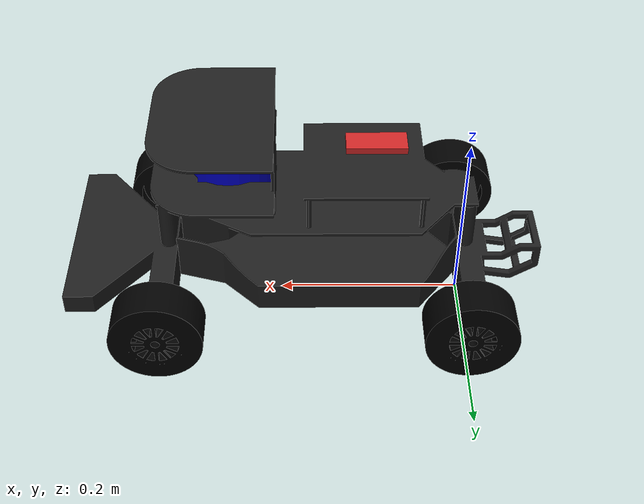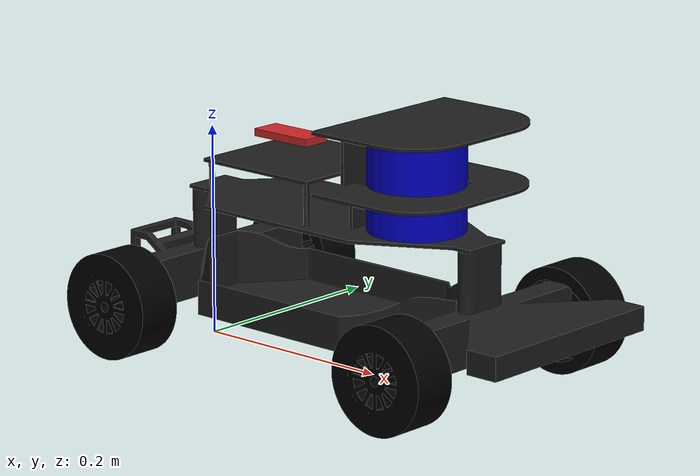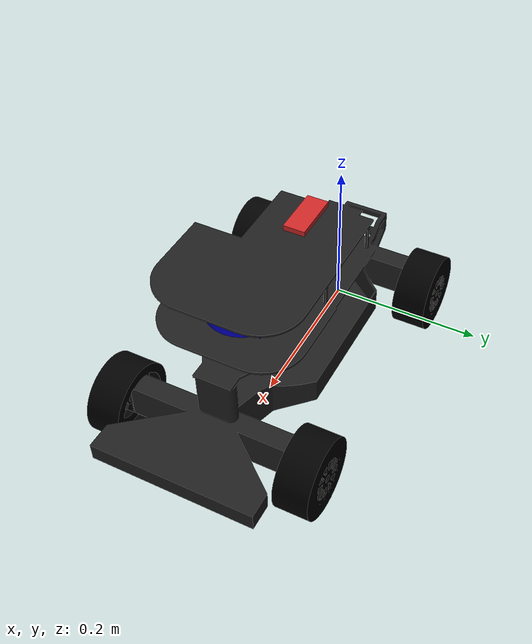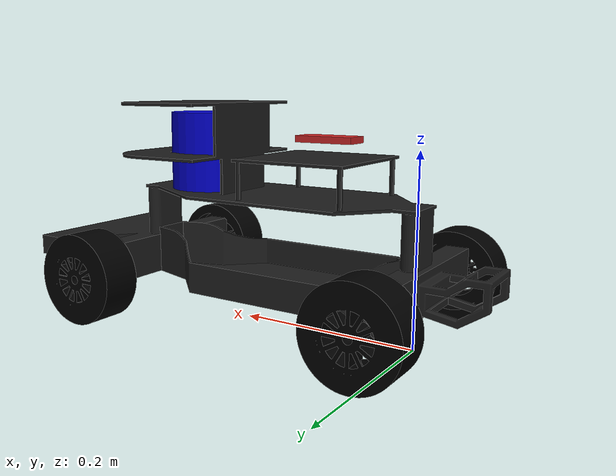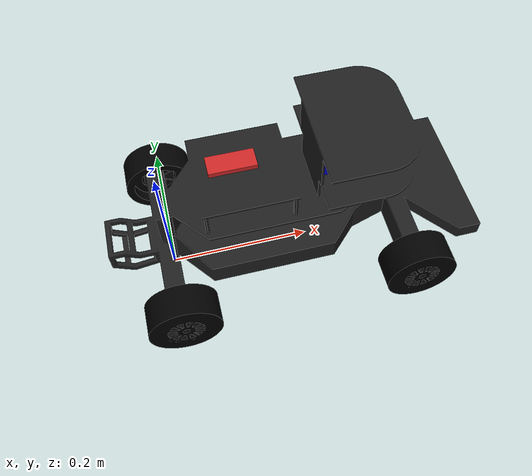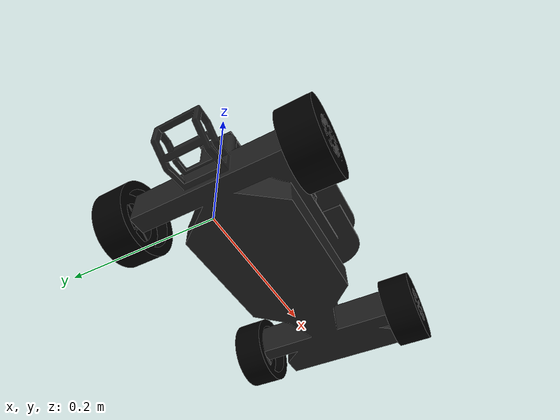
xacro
<?xml version="1.0"?>
<robot xmlns:xacro="http://www.ros.org/wiki/xacro" name="mintaur">

    <xacro:include filename="$(find avc_urdf)/urdf/materials.xacro" />
	<xacro:include filename="$(find avc_urdf)/urdf/properties.xacro" />
    <xacro:include filename="$(find avc_urdf)/urdf/links.xacro" />
    <xacro:include filename="$(find avc_urdf)/urdf/gazebo.xacro" />

  <xacro:base_link/>

  <xacro:wheel prefix="right" suffix="front" fb="${frontWheelDist}" lr="${-seperationWheelDist}"/>
  <xacro:wheel prefix="left" suffix="front" fb="${frontWheelDist}" lr="${seperationWheelDist}"/>
  <xacro:wheel prefix="right" suffix="back" fb="${backWheelDist}" lr="${-seperationWheelDist}"/>
  <xacro:wheel prefix="left" suffix="back" fb="${backWheelDist}" lr="${seperationWheelDist}"/>

  <xacro:imu />
  <xacro:lidar />

</robot>

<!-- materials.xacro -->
<robot name="mintaur"
    xmlns:xacro="http://www.ros.org/wiki/xacro">

    <material name="black">
        <color rgba="0.0 0.0 0.0 1.0"/>
    </material>

    <material name="blue">
        <color rgba="0.0 0.0 0.8 1.0"/>
    </material>

    <material name="green">
        <color rgba="0.0 0.8 0.0 1.0"/>
    </material>

    <material name="grey">
        <color rgba="0.2 0.2 0.2 1.0"/>
    </material>

    <material name="orange">
        <color rgba="${255/255} ${108/255} ${10/255} 1.0"/>
    </material>

    <material name="brown">
        <color rgba="${222/255} ${207/255} ${195/255} 1.0"/>
    </material>

    <material name="red">
        <color rgba="0.8 0.0 0.0 1.0"/>
    </material>

    <material name="white">
        <color rgba="1.0 1.0 1.0 1.0"/>
    </material>

    <material name="acrylic">
        <color rgba="1.0 1.0 1.0 0.4"/>
    </material>

</robot>

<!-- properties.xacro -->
<robot xmlns:xacro="http://www.ros.org/wiki/xacro" name="mintaur">

    <!-- X axis direction is forward, Y axis direction is left -->

    <!-- ______________Chassis parameters__________________________ -->
    <xacro:property name="chassisL" value="0.51" />
    <xacro:property name="chassisW" value="0.2" />
    <xacro:property name="chassisH" value="0.15" />

    <xacro:property name="chassisMass" value="1"/>
    <xacro:property name="chassisIxx" value="0.4"/>
    <xacro:property name="chassisIxy" value="0.4"/>
    <xacro:property name="chassisIyy" value="0.4"/>
    <xacro:property name="chassisIxz" value="0.0"/>
    <xacro:property name="chassisIyz" value="0.0"/>
    <xacro:property name="chassisIzz" value="0.0"/>

    <xacro:property name="chassisScale" value="0.001"/>

    <xacro:property name="chassisMeshXoffset" value="-0.125"/>
    <xacro:property name="chassisMeshYoffset" value="-0.070"/>
    <xacro:property name="chassisMeshZoffset" value="-0.085"/>

    <!-- ______________Wheel parameters__________________________ -->
    <!-- Wheel Rotation Limits> -->
    <xacro:property name="llimit" value="-0.785" />
    <xacro:property name="ulimit" value="0.785" />

    <!-- Wheel Locations -->
    <xacro:property name="rightWheelDist" value="-.1215" />
    <xacro:property name="leftWheelDist" value=".1215" />
    <xacro:property name="frontWheelDist" value="0.1535" />
    <xacro:property name="backWheelDist" value="-0.1763" />

    <xacro:property name="wheelDrop" value="-0.075" />
    <xacro:property name="wheelScale" value="0.001"/>

    <xacro:property name="wheelMeshXoffset" value="0"/>
    <xacro:property name="wheelMeshYoffset" value="0.022"/>
    <xacro:property name="wheelMeshYoffsetLeft" value="-0.022"/>
    <xacro:property name="wheelMeshZoffset" value="0"/>

    <!-- Wheel Physical Propreties-->
    <xacro:property name="wheelThickness" value="0.043" />
    <xacro:property name="wheelRadius" value="0.05"/>
    <xacro:property name="axleEffort" value="0.001"/>
    <xacro:property name="axleVelocity" value="0.5"/>

    <xacro:property name="wheelMass" value="1"/>
    <xacro:property name="wheelIxx" value="0.4"/>
    <xacro:property name="wheelIyy" value="0.4"/>
    <xacro:property name="wheelIzz" value="0.4"/>
    <xacro:property name="wheelIxy" value="0.0"/>
    <xacro:property name="wheelIxz" value="0.0"/>
    <xacro:property name="wheelIyz" value="0.0"/>

    <!-- Wheel Gazebo and Inertial Properties -->
    <xacro:property name="wheelMu1" value="200"/>
    <xacro:property name="wheelMu2" value="100"/>
    <xacro:property name="wheelKp" value="10000000.0"/>
    <xacro:property name="wheelKd" value="1.0"/>

    <!-- ______________IMU parameters__________________________ -->
    <xacro:property name="imuL" value="0.064" />
    <xacro:property name="imuW" value="0.028" />
    <xacro:property name="imuH" value="0.007" />

    <xacro:property name="imuMass" value="0.1"/>
    <xacro:property name="imuIxx" value="0.4"/>
    <xacro:property name="imuIxy" value="0.4"/>
    <xacro:property name="imuIyy" value="0.4"/>
    <xacro:property name="imuIxz" value="0.4"/>
    <xacro:property name="imuIyz" value="0.4"/>
    <xacro:property name="imuIzz" value="0.4"/>

    <xacro:property name="imuXoffset" value="-0.077"/>
    <xacro:property name="imuYoffset" value="0.0"/>
    <xacro:property name="imuZoffset" value="0.077"/>

    <!-- __________________Random Values______________________ -->
    <xacro:property name="width" value="0.2" />
    <xacro:property name="leglen" value="0.6" />
    <xacro:property name="polelen" value="0.2" />
    <xacro:property name="bodylen" value="0.6" />
    <xacro:property name="baselen" value="0.4" />
    <xacro:property name="wheeldiam" value="0.07" />
    <xacro:property name="pis" value="3.1415" />
    <xacro:property name="seperationWheelDist" value=".1215" />

    <!-- ______________Lidar parameters__________________________ -->
    <xacro:property name="lidarThick" value="0.086" />
    <xacro:property name="lidarRadius" value="0.045" />

    <xacro:property name="lidarXoffset" value="0.076"/>
    <xacro:property name="lidarYoffset" value="0.0"/>
    <xacro:property name="lidarZoffset" value="0.059"/>

    <xacro:property name="lidarMass" value="0.025"/>
    <xacro:property name="lidarIxx" value="${0.08333333*lidarMass*(3*lidarRadius*lidarRadius+lidarThick*lidarThick)}"/>
    <xacro:property name="lidarIxy" value="0.0"/>
    <xacro:property name="lidarIyy" value="${0.08333333*lidarMass*(3*lidarRadius*lidarRadius+lidarThick*lidarThick)}"/>
    <xacro:property name="lidarIxz" value="0.0"/>
    <xacro:property name="lidarIyz" value="0.0"/>
    <xacro:property name="lidarIzz" value="${0.5*lidarMass*(lidarRadius*lidarRadius)}"/>

</robot>

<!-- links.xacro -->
<robot xmlns:xacro="http://www.ros.org/wiki/xacro" name="mintaur">

  <xacro:include filename="$(find avc_urdf)/urdf/inertial.xacro" />
  <xacro:include filename="$(find avc_urdf)/urdf/joints.xacro" />
  <xacro:include filename="$(find avc_urdf)/urdf/transmissions.xacro" />
  <xacro:include filename="$(find avc_urdf)/urdf/geometries.xacro" />

  <xacro:macro name="base_link">
   <link name="base_footprint"/>

  <joint name="base_joint" type="fixed">
    <parent link="base_footprint"/>
    <child link="base_link" />
    <origin xyz="${-backWheelDist} 0 0.13" rpy="0 0 0"/>
  </joint>

    <link name="base_link">
      <visual>
        <geometry>
          <mesh filename="file:///$(find avc_urdf)/meshes/chassis2.DAE" scale="${chassisScale} ${chassisScale} ${chassisScale}"/>
        </geometry>
        <origin rpy="1.57 0 0" xyz="${chassisMeshXoffset} ${chassisMeshYoffset} ${chassisMeshZoffset}" />
      </visual>
      <collision>
        <geometry>
          <box size = "${chassisL} ${chassisW} ${chassisH} "/>
        </geometry>
      </collision>
    </link>
    <xacro:base_gazebo/>
  </xacro:macro>

  <xacro:macro name="wheel" params="prefix suffix fb lr">

    <link name="${prefix}_${suffix}_wheel">
      <visual>
        <xacro:wheel_mesh_geometry side="${prefix}"/>
        <material name="black" />
      </visual>
      <collision>
        <xacro:wheel_geometry />
      </collision>
      <xacro:wheel_inertial />
    </link>

    <link name="${prefix}_${suffix}_axle"/>

  	<xacro:axle_joint prefix="${prefix}" suffix="${suffix}" fb="${fb}" lr="${lr}"/>

    <xacro:wheel_move_joint prefix="${prefix}" suffix="${suffix}" fb="${fb}" lr="${lr}" />

    <!-- This block provides the simulator (Gazebo) with information on a few additional
    physical properties. See http://gazebosim.org/tutorials/?tut=ros_urdf for more-->
    <xacro:wheel_gazebo prefix="${prefix}" suffix="${suffix}" />

    <!-- This block connects the wheel joint to an actuator (motor), which informs both
    simulation and visualization of the robot -->
    <xacro:wheel_transmission prefix="${prefix}" suffix="${suffix}" />

  </xacro:macro>

  <xacro:macro name="imu">
    <link name="imu_link">
      <visual>
        <xacro:imu_geometry />
      </visual>
      <collision>
        <xacro:imu_geometry />
      </collision>
      <xacro:imu_inertial />
    </link>
    <xacro:imu_joint />

    <xacro:imu_gazebo />
  </xacro:macro>

  <xacro:macro name="lidar">
    <link name="lidar_link">
      <visual>
        <xacro:lidar_geometry />
        <material name="blue" />
      </visual>
      <collision>
        <xacro:lidar_geometry />
      </collision>
      <xacro:lidar_inertial />
    </link>
    <xacro:lidar_joint />

    <xacro:lidar_gazebo />
  </xacro:macro>

</robot>

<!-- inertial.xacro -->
<robot xmlns:xacro="http://www.ros.org/wiki/xacro" name="mintaur">

	<xacro:macro name="box_inertial">
		<inertial>
			<mass value="${chassisMass}"/>
			<inertia ixx="${chassisIxx}" ixy="${chassisIxy}" ixz="${chassisIxz}" iyy="${chassisIyy}" iyz="${chassisIyz}" izz="${chassisIzz}"/>
		</inertial>
	</xacro:macro>

	<xacro:macro name="default_inertial" params="mass">
		<inertial>
			<mass value="${mass}" />
			<inertia ixx="1.0" ixy="0.0" ixz="0.0" iyy="1.0" iyz="0.0" izz="1.0" />
		</inertial>
	</xacro:macro>

	<xacro:macro name="wheel_inertial">
		<inertial>
			<mass value="${wheelMass}"/>
			<inertia ixx="${wheelIxx}" ixy="${wheelIxy}" ixz="${wheelIxz}" iyy="${wheelIyy}" iyz="${wheelIyz}" izz="${wheelIzz}"/>
		</inertial>
	</xacro:macro>

	<xacro:macro name="axle_inertial">
		<inertial>
			<mass value="0.001"/>
			<inertia ixx="0.0" ixy="0.0" ixz="0.0" iyy="0.0" iyz="0.0" izz="0.0"/>
		</inertial>
	</xacro:macro>

	<xacro:macro name="imu_inertial">
		<inertial>
			<mass value="${imuMass}"/>
			<inertia ixx="${imuIxx}" ixy="${imuIxy}" ixz="${imuIxz}" iyy="${imuIyy}" iyz="${imuIyz}" izz="${imuIzz}"/>
		</inertial>
	</xacro:macro>

	<xacro:macro name="lidar_inertial">
		<inertial>
			<mass value="${lidarMass}"/>
			<inertia ixx="${lidarIxx}" ixy="${lidarIxy}" ixz="${lidarIxz}" iyy="${lidarIyy}" iyz="${lidarIyz}" izz="${lidarIzz}"/>
		</inertial>
	</xacro:macro>

</robot>

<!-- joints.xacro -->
<robot xmlns:xacro="http://www.ros.org/wiki/xacro" name="mintaur">

	<xacro:macro name="wheel_move_joint" params="prefix suffix fb lr">
        <joint name="${prefix}_${suffix}_wheel_joint" type="continuous">
        <axis xyz="0 1 0" rpy="0 0 0" />
        <parent link="${prefix}_${suffix}_axle"/>
        <child link="${prefix}_${suffix}_wheel"/>
        <origin xyz="0 0 0" rpy="0 0 0"/>
        </joint>
	</xacro:macro>

    <xacro:macro name="wheel_move_joint2" params="prefix suffix fb lr">
        <joint name="$wheel_{prefix}_joint" type="continuous">
        <axis xyz="0 1 0" rpy="0 0 0" />
        <parent link="base_link"/>
        <child link="${prefix}_${suffix}_wheel"/>
        <origin xyz="${fb} ${lr} ${-wheeldiam/2-.05}" rpy="0 0 0"/>
        </joint>
	</xacro:macro>

	<xacro:macro name="axle_joint" params="prefix suffix fb lr">
        <joint name="${prefix}_${suffix}_axle_joint" type="revolute">
            <axis xyz="0 0 1"/>
            <limit effort="${axleEffort}" lower="${llimit}" upper="${ulimit}" velocity="${axleVelocity}"/>
            <parent link="base_link"/>
            <child link="${prefix}_${suffix}_axle"/>
            <origin xyz="${fb} ${lr} ${wheelDrop}" />
        </joint>
	</xacro:macro>

	<xacro:macro name="rear_wheel_joint" params="side fob sideDim fobDim">
        <joint name="${side}_${fob}_wheel_joint" type="continuous">
            <axis xyz="0 1 0"/>
            <parent link="base_link"/>
            <child link="${side}_${fob}_wheel"/>
            <origin xyz="${fobDim} ${sideDim} ${wheelDrop}" />
        </joint>
	</xacro:macro>

    <xacro:macro name="front_wheel_joint" params="side fob sideDim fobDim">
        <joint name="${side}_${fob}_wheel_joint" type="continuous">
            <axis xyz="0 1 0"/>
            <parent link="${side}_${fob}_axle"/>
            <child link="${side}_${fob}_wheel"/>
            <origin xyz="0 0 0" />
        </joint>
	</xacro:macro>

    <xacro:macro name="chassis_box_joint">
        <joint name="chassis_box_joint" type="fixed">
            <axis xyz="0 1 0"/>
            <parent link="base_link"/>
            <child link="chassis_box_link"/>
            <origin xyz="0 0 0" />
        </joint>
	</xacro:macro>

    <xacro:macro name="imu_joint">
        <joint name="imu_joint" type="fixed">
            <axis xyz="0 1 0"/>
            <parent link="base_link"/>
            <child link="imu_link"/>
            <origin xyz="${imuXoffset} ${imuYoffset} ${imuZoffset}" />
        </joint>
    </xacro:macro>

    <xacro:macro name="lidar_joint">
        <joint name="lidar_joints" type="fixed">
            <parent link="base_link"/>
            <child link="lidar_link"/>
            <origin xyz="${lidarXoffset} ${lidarYoffset} ${lidarZoffset}"/>
        </joint>
    </xacro:macro>

</robot>

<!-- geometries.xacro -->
<robot xmlns:xacro="http://www.ros.org/wiki/xacro" name="mintaur">

    <xacro:macro name="chassis_mesh_geometry">
        <geometry>
            <mesh filename="file:///$(find avc_urdf)/meshes/chassis2.DAE" scale="${chassisScale} ${chassisScale} ${chassisScale}"/>
         </geometry>
         <origin rpy="1.57 0 0" xyz="${chassisMeshXoffset} ${chassisMeshYoffset} ${chassisMeshZoffset}" />
	</xacro:macro>

	<xacro:macro name="box_geometry">
       <geometry>
            <box size = "${chassisL} ${chassisW} ${chassisH} "/>
        </geometry>
	</xacro:macro>

    <xacro:macro name="wheel_mesh_geometry" params="side">
        <geometry>
            <mesh filename="file:///$(find avc_urdf)/meshes/wheels.DAE" scale="${wheelScale} ${wheelScale} ${wheelScale}"/>
         </geometry>
            <xacro:if value="${side =='right'}">
                <origin rpy="1.57 0 0" xyz="0 ${wheelMeshYoffset} 0" />
            </xacro:if>
            <xacro:if value="${side =='left'}">
                <origin rpy="1.57 0 3.14" xyz="${wheelMeshXoffset} ${wheelMeshYoffsetLeft} ${wheelMeshZoffset}" />
            </xacro:if>
	</xacro:macro>

    <xacro:macro name="wheel_geometry">
        <geometry>
            <cylinder length="${wheelThickness}" radius="${wheelRadius}"/>
        </geometry>
        <origin rpy="1.57075 0 0" xyz="0 0 0"/>
	</xacro:macro>

   <xacro:macro name="imu_geometry">
       <geometry>
            <box size = "${imuL} ${imuW} ${imuH} "/>
        </geometry>
    </xacro:macro>

    <xacro:macro name="lidar_geometry">
        <geometry>
            <cylinder length="${lidarThick}" radius="${lidarRadius}"/>
        </geometry>
        <origin rpy="0 0 0" xyz="0 0 0"/>
    </xacro:macro>

</robot>
